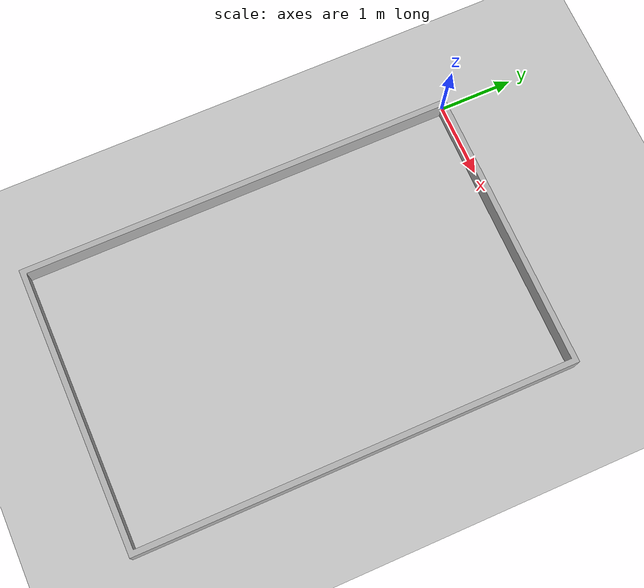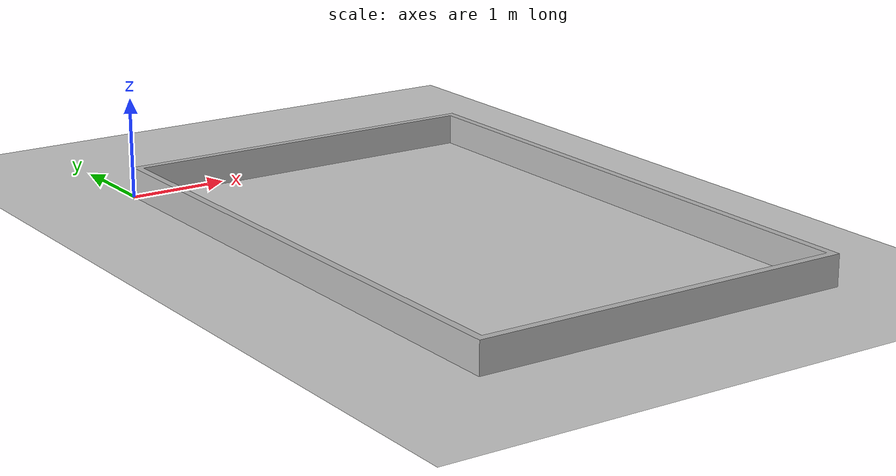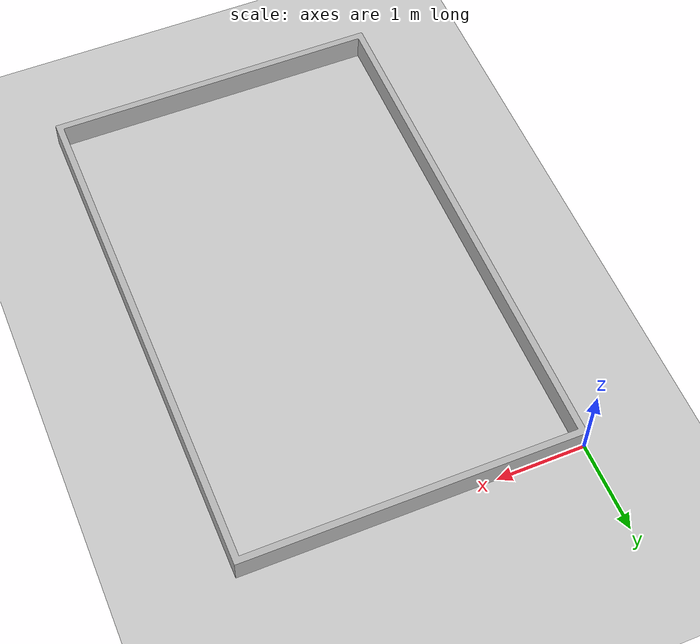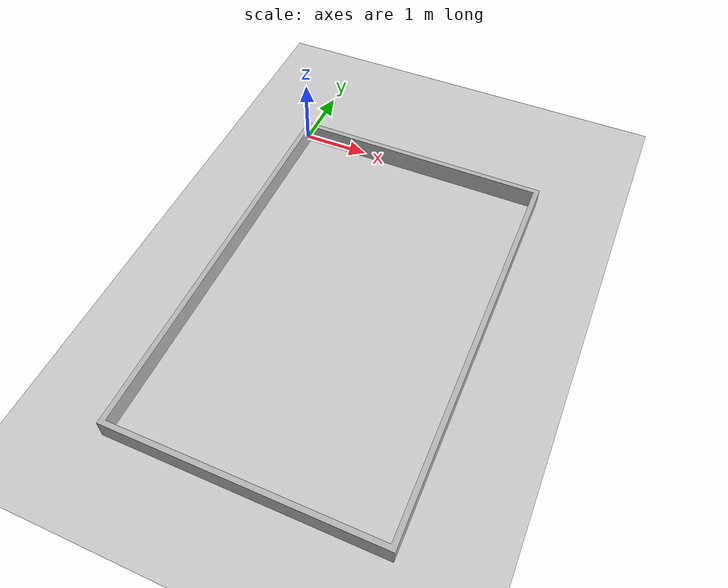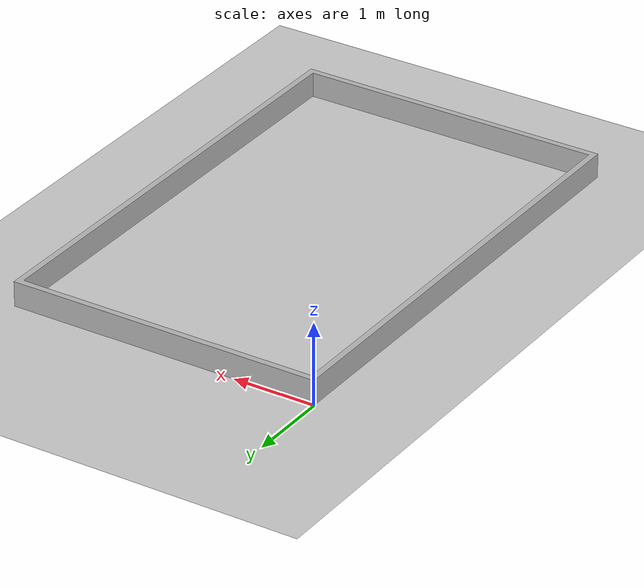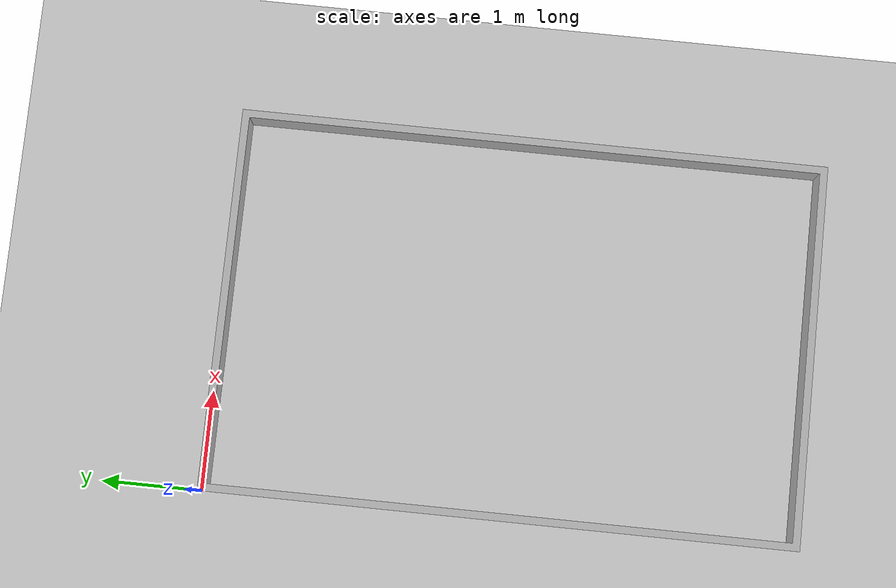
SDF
<?xml version="1.0" ?>
<sdf version="1.4">
  <world name ="default">
    <model name="ground_plane">
    <static>true</static>
    <link name="link">
      <collision name="collision">
        <geometry>
          <plane>
            <normal>0 0 1</normal>
            <size>100 100</size>
          </plane>
        </geometry>
        <surface>
          <friction>
            <ode>
              <mu>0.56</mu>
              <mu2>0.28</mu2>
            </ode>
          </friction>
        </surface>
      </collision>
      <visual name="visual">
        <cast_shadows>false</cast_shadows>
        <geometry>
          <plane>
            <normal>0 0 1</normal>
            <size>100 100</size>
          </plane>
        </geometry>
        <material>
          <script>
            <uri>file://media/materials/scripts/gazebo.material</uri>
            <name>Gazebo/Grey</name>
          </script>
        </material>
      </visual>
    </link>
</model>
<model name="Walls">
 <pose>0 0 0  1.571 0 0</pose>

      <static>true</static>
      <link name="body">
        <visual name="visual">
          <geometry>
            <mesh><uri>file://Walls.STL</uri>
                         <scale>.001 .001 .001</scale>
            </mesh>

          </geometry>
        </visual>
      </link>
</model>
    <include>
      <uri>model://sun</uri>
    </include>
  </world>
</sdf>
